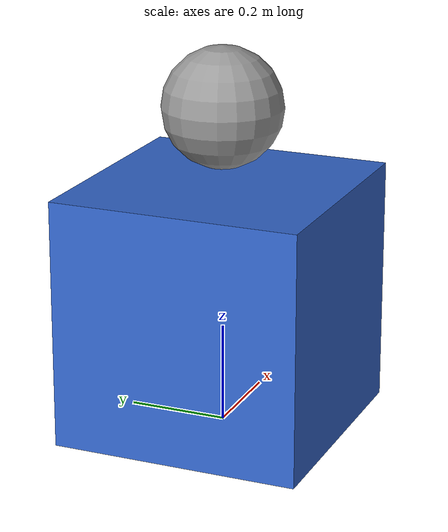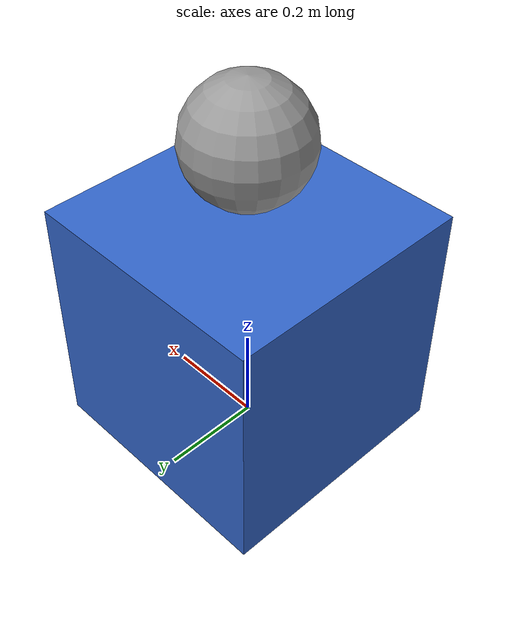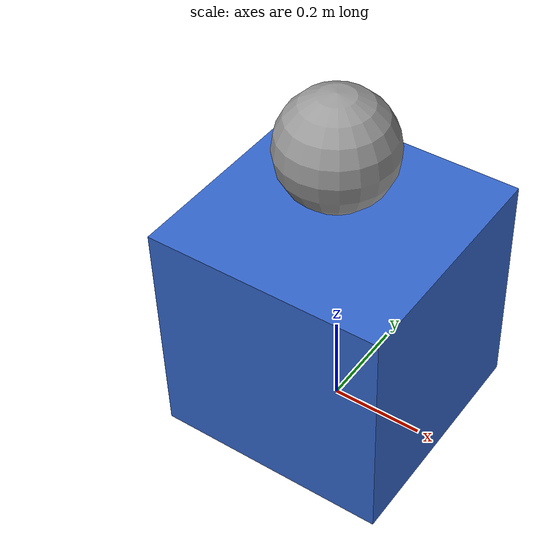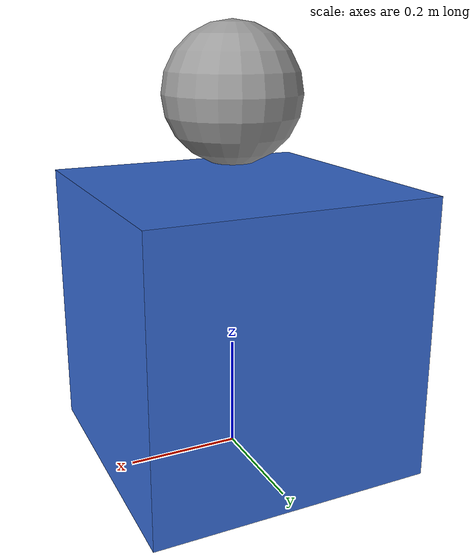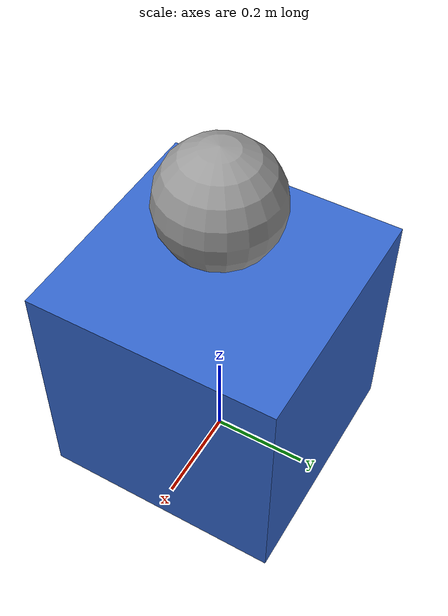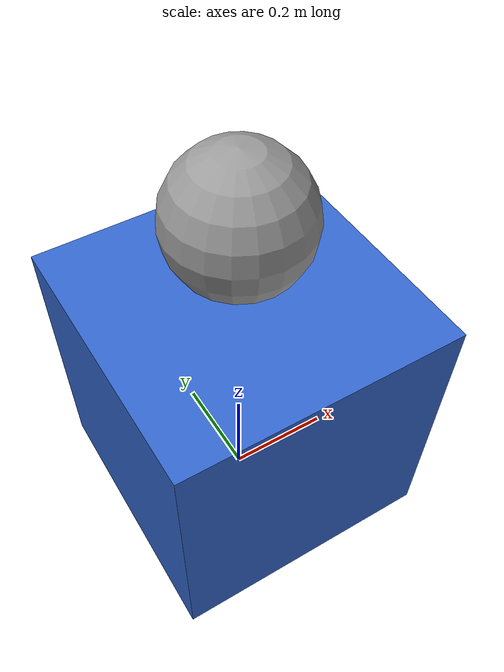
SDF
<?xml version="1.0"?>
<sdf version="1.8">
  <model name="test_box">

    <link name="base">
      <pose>0 0 0.25 0 0 0</pose>
      <inertial>
        <mass>2.0</mass>
        <inertia>
          <ixx>0.0833</ixx><ixy>0.0</ixy><ixz>0.0</ixz>
          <iyy>0.0833</iyy><iyz>0.0</iyz>
          <izz>0.0833</izz>
        </inertia>
      </inertial>
      <collision name="base_collision">
        <geometry>
          <box><size>0.5 0.5 0.5</size></box>
        </geometry>
      </collision>
      <visual name="base_visual">
        <geometry>
          <box><size>0.5 0.5 0.5</size></box>
        </geometry>
        <material>
          <ambient>0.2 0.4 0.8 1</ambient>
          <diffuse>0.2 0.4 0.8 1</diffuse>
          <specular>0.1 0.1 0.1 1</specular>
        </material>
      </visual>
    </link>

    <link name="top">
      <pose>0 0 0.65 0 0 0</pose>
      <inertial>
        <mass>0.5</mass>
        <inertia>
          <ixx>0.01</ixx><ixy>0.0</ixy><ixz>0.0</ixz>
          <iyy>0.01</iyy><iyz>0.0</iyz>
          <izz>0.01</izz>
        </inertia>
      </inertial>
      <collision name="top_collision">
        <geometry>
          <sphere><radius>0.12</radius></sphere>
        </geometry>
      </collision>
      <visual name="top_visual">
        <geometry>
          <sphere><radius>0.12</radius></sphere>
        </geometry>
        <material>
          <ambient>0.6 0.6 0.6 1</ambient>
          <diffuse>0.6 0.6 0.6 1</diffuse>
        </material>
      </visual>
    </link>

    <joint name="base_top_fixed" type="fixed">
      <parent>base</parent>
      <child>top</child>
    </joint>

  </model>
</sdf>
